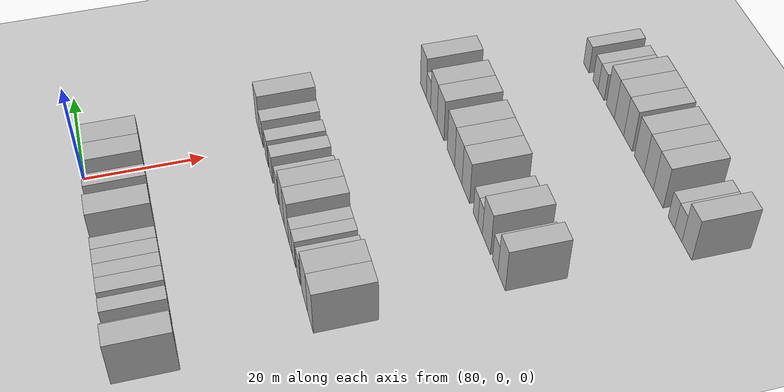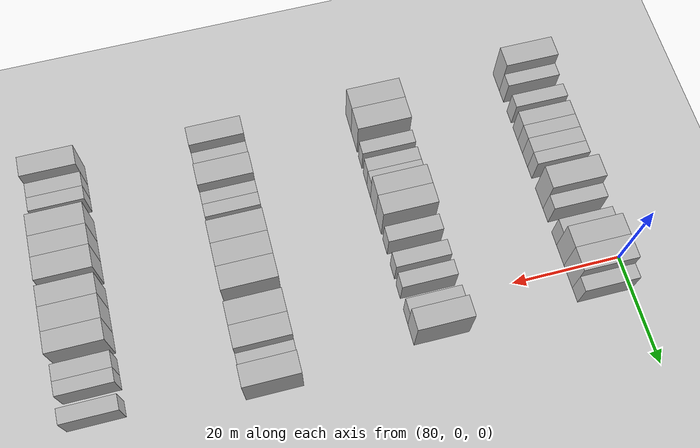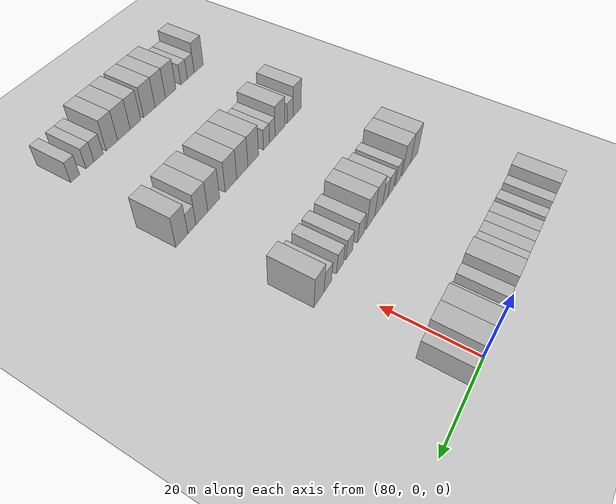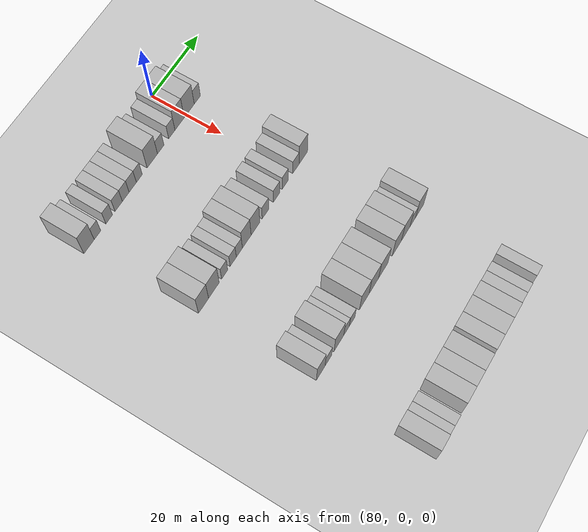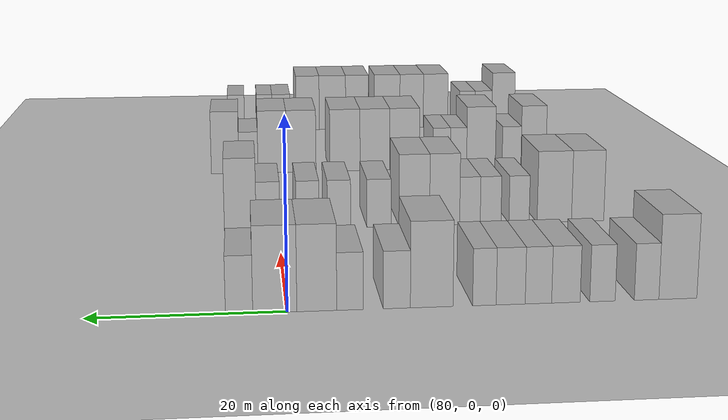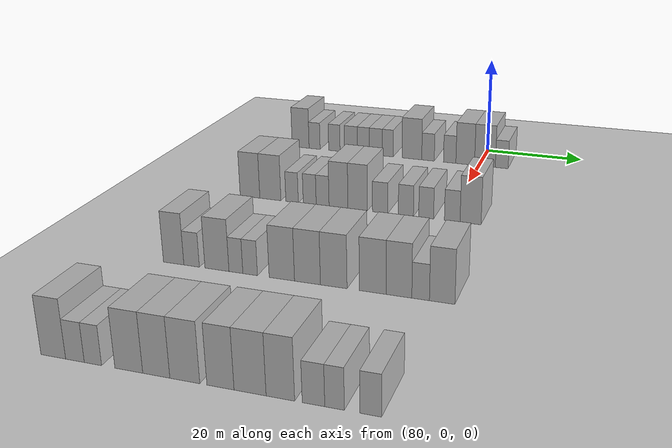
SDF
<sdf version="1.6">
 <world name="default">
  <include>
   <name>ground_plane_2</name>
   <uri>model://HANNAS_ground_plane</uri>
   <pose>100 0 0  0 0 0</pose>
  </include>
  <model name="building_544">
   <static>1</static>
   <pose>85.0000 -39.9580 0 0.000000 0.000000 0.000000</pose>
   <link name="link">
    <pose>0 0 4.50 0 0 0</pose>
    <collision name="collision"><geometry><box><size>10.0000 4.0042 9.0000</size></box></geometry></collision>
    <visual name="visual">
     <cast_shadows>0</cast_shadows>
     <geometry><box><size>10.0000 4.0042 9.0000</size></box></geometry>
     <material>
      <script>
       <uri>model://HANNAS_wall/materials/scripts</uri>
       <uri>model://HANNAS_wall/materials/textures</uri>
       <name>vrc/HANNAS_wall</name>
      </script>
     </material>
    </visual>
   </link>
  </model>
  <model name="building_545">
   <static>1</static>
   <pose>85.0000 -36.6675 0 0.000000 0.000000 0.000000</pose>
   <link name="link">
    <pose>0 0 3.00 0 0 0</pose>
    <collision name="collision"><geometry><box><size>10.0000 2.5767 6.0000</size></box></geometry></collision>
    <visual name="visual">
     <cast_shadows>0</cast_shadows>
     <geometry><box><size>10.0000 2.5767 6.0000</size></box></geometry>
     <material>
      <script>
       <uri>model://HANNAS_wall/materials/scripts</uri>
       <uri>model://HANNAS_wall/materials/textures</uri>
       <name>vrc/HANNAS_wall</name>
      </script>
     </material>
    </visual>
   </link>
  </model>
  <model name="building_546">
   <static>1</static>
   <pose>85.0000 -32.0566 0 0.000000 0.000000 0.000000</pose>
   <link name="link">
    <pose>0 0 3.00 0 0 0</pose>
    <collision name="collision"><geometry><box><size>10.0000 2.6451 6.0000</size></box></geometry></collision>
    <visual name="visual">
     <cast_shadows>0</cast_shadows>
     <geometry><box><size>10.0000 2.6451 6.0000</size></box></geometry>
     <material>
      <script>
       <uri>model://HANNAS_wall/materials/scripts</uri>
       <uri>model://HANNAS_wall/materials/textures</uri>
       <name>vrc/HANNAS_wall</name>
      </script>
     </material>
    </visual>
   </link>
  </model>
  <model name="building_547">
   <static>1</static>
   <pose>85.0000 -28.2557 0 0.000000 0.000000 0.000000</pose>
   <link name="link">
    <pose>0 0 3.00 0 0 0</pose>
    <collision name="collision"><geometry><box><size>10.0000 2.9567 6.0000</size></box></geometry></collision>
    <visual name="visual">
     <cast_shadows>0</cast_shadows>
     <geometry><box><size>10.0000 2.9567 6.0000</size></box></geometry>
     <material>
      <script>
       <uri>model://HANNAS_wall/materials/scripts</uri>
       <uri>model://HANNAS_wall/materials/textures</uri>
       <name>vrc/HANNAS_wall</name>
      </script>
     </material>
    </visual>
   </link>
  </model>
  <model name="building_548">
   <static>1</static>
   <pose>85.0000 -25.4140 0 0.000000 0.000000 0.000000</pose>
   <link name="link">
    <pose>0 0 3.00 0 0 0</pose>
    <collision name="collision"><geometry><box><size>10.0000 2.7268 6.0000</size></box></geometry></collision>
    <visual name="visual">
     <cast_shadows>0</cast_shadows>
     <geometry><box><size>10.0000 2.7268 6.0000</size></box></geometry>
     <material>
      <script>
       <uri>model://HANNAS_wall/materials/scripts</uri>
       <uri>model://HANNAS_wall/materials/textures</uri>
       <name>vrc/HANNAS_wall</name>
      </script>
     </material>
    </visual>
   </link>
  </model>
  <model name="building_549">
   <static>1</static>
   <pose>85.0000 -22.5615 0 0.000000 0.000000 0.000000</pose>
   <link name="link">
    <pose>0 0 3.00 0 0 0</pose>
    <collision name="collision"><geometry><box><size>10.0000 2.9781 6.0000</size></box></geometry></collision>
    <visual name="visual">
     <cast_shadows>0</cast_shadows>
     <geometry><box><size>10.0000 2.9781 6.0000</size></box></geometry>
     <material>
      <script>
       <uri>model://HANNAS_wall/materials/scripts</uri>
       <uri>model://HANNAS_wall/materials/textures</uri>
       <name>vrc/HANNAS_wall</name>
      </script>
     </material>
    </visual>
   </link>
  </model>
  <model name="building_550">
   <static>1</static>
   <pose>85.0000 -19.8662 0 0.000000 0.000000 0.000000</pose>
   <link name="link">
    <pose>0 0 3.00 0 0 0</pose>
    <collision name="collision"><geometry><box><size>10.0000 2.4125 6.0000</size></box></geometry></collision>
    <visual name="visual">
     <cast_shadows>0</cast_shadows>
     <geometry><box><size>10.0000 2.4125 6.0000</size></box></geometry>
     <material>
      <script>
       <uri>model://HANNAS_wall/materials/scripts</uri>
       <uri>model://HANNAS_wall/materials/textures</uri>
       <name>vrc/HANNAS_wall</name>
      </script>
     </material>
    </visual>
   </link>
  </model>
  <model name="building_551">
   <static>1</static>
   <pose>85.0000 -14.4963 0 0.000000 0.000000 0.000000</pose>
   <link name="link">
    <pose>0 0 4.50 0 0 0</pose>
    <collision name="collision"><geometry><box><size>10.0000 4.3272 9.0000</size></box></geometry></collision>
    <visual name="visual">
     <cast_shadows>0</cast_shadows>
     <geometry><box><size>10.0000 4.3272 9.0000</size></box></geometry>
     <material>
      <script>
       <uri>model://HANNAS_wall/materials/scripts</uri>
       <uri>model://HANNAS_wall/materials/textures</uri>
       <name>vrc/HANNAS_wall</name>
      </script>
     </material>
    </visual>
   </link>
  </model>
  <model name="building_552">
   <static>1</static>
   <pose>85.0000 -10.9630 0 0.000000 0.000000 0.000000</pose>
   <link name="link">
    <pose>0 0 3.00 0 0 0</pose>
    <collision name="collision"><geometry><box><size>10.0000 2.7395 6.0000</size></box></geometry></collision>
    <visual name="visual">
     <cast_shadows>0</cast_shadows>
     <geometry><box><size>10.0000 2.7395 6.0000</size></box></geometry>
     <material>
      <script>
       <uri>model://HANNAS_wall/materials/scripts</uri>
       <uri>model://HANNAS_wall/materials/textures</uri>
       <name>vrc/HANNAS_wall</name>
      </script>
     </material>
    </visual>
   </link>
  </model>
  <model name="building_553">
   <static>1</static>
   <pose>85.0000 -6.2572 0 0.000000 0.000000 0.000000</pose>
   <link name="link">
    <pose>0 0 3.00 0 0 0</pose>
    <collision name="collision"><geometry><box><size>10.0000 2.6720 6.0000</size></box></geometry></collision>
    <visual name="visual">
     <cast_shadows>0</cast_shadows>
     <geometry><box><size>10.0000 2.6720 6.0000</size></box></geometry>
     <material>
      <script>
       <uri>model://HANNAS_wall/materials/scripts</uri>
       <uri>model://HANNAS_wall/materials/textures</uri>
       <name>vrc/HANNAS_wall</name>
      </script>
     </material>
    </visual>
   </link>
  </model>
  <model name="building_554">
   <static>1</static>
   <pose>85.0000 -2.9309 0 0.000000 0.000000 0.000000</pose>
   <link name="link">
    <pose>0 0 4.50 0 0 0</pose>
    <collision name="collision"><geometry><box><size>10.0000 3.9807 9.0000</size></box></geometry></collision>
    <visual name="visual">
     <cast_shadows>0</cast_shadows>
     <geometry><box><size>10.0000 3.9807 9.0000</size></box></geometry>
     <material>
      <script>
       <uri>model://HANNAS_wall/materials/scripts</uri>
       <uri>model://HANNAS_wall/materials/textures</uri>
       <name>vrc/HANNAS_wall</name>
      </script>
     </material>
    </visual>
   </link>
  </model>
  <model name="building_555">
   <static>1</static>
   <pose>85.0000 1.2476 0 0.000000 0.000000 0.000000</pose>
   <link name="link">
    <pose>0 0 4.50 0 0 0</pose>
    <collision name="collision"><geometry><box><size>10.0000 4.3762 9.0000</size></box></geometry></collision>
    <visual name="visual">
     <cast_shadows>0</cast_shadows>
     <geometry><box><size>10.0000 4.3762 9.0000</size></box></geometry>
     <material>
      <script>
       <uri>model://HANNAS_wall/materials/scripts</uri>
       <uri>model://HANNAS_wall/materials/textures</uri>
       <name>vrc/HANNAS_wall</name>
      </script>
     </material>
    </visual>
   </link>
  </model>
  <model name="building_556">
   <static>1</static>
   <pose>85.0000 4.7857 0 0.000000 0.000000 0.000000</pose>
   <link name="link">
    <pose>0 0 3.00 0 0 0</pose>
    <collision name="collision"><geometry><box><size>10.0000 2.7001 6.0000</size></box></geometry></collision>
    <visual name="visual">
     <cast_shadows>0</cast_shadows>
     <geometry><box><size>10.0000 2.7001 6.0000</size></box></geometry>
     <material>
      <script>
       <uri>model://HANNAS_wall/materials/scripts</uri>
       <uri>model://HANNAS_wall/materials/textures</uri>
       <name>vrc/HANNAS_wall</name>
      </script>
     </material>
    </visual>
   </link>
  </model>
  <model name="building_774">
   <static>1</static>
   <pose>115.0000 -38.3271 0 0.000000 0.000000 0.000000</pose>
   <link name="link">
    <pose>0 0 4.50 0 0 0</pose>
    <collision name="collision"><geometry><box><size>10.0000 4.0976 9.0000</size></box></geometry></collision>
    <visual name="visual">
     <cast_shadows>0</cast_shadows>
     <geometry><box><size>10.0000 4.0976 9.0000</size></box></geometry>
     <material>
      <script>
       <uri>model://HANNAS_wall/materials/scripts</uri>
       <uri>model://HANNAS_wall/materials/textures</uri>
       <name>vrc/HANNAS_wall</name>
      </script>
     </material>
    </visual>
   </link>
  </model>
  <model name="building_775">
   <static>1</static>
   <pose>115.0000 -34.1061 0 0.000000 0.000000 0.000000</pose>
   <link name="link">
    <pose>0 0 4.50 0 0 0</pose>
    <collision name="collision"><geometry><box><size>10.0000 4.3443 9.0000</size></box></geometry></collision>
    <visual name="visual">
     <cast_shadows>0</cast_shadows>
     <geometry><box><size>10.0000 4.3443 9.0000</size></box></geometry>
     <material>
      <script>
       <uri>model://HANNAS_wall/materials/scripts</uri>
       <uri>model://HANNAS_wall/materials/textures</uri>
       <name>vrc/HANNAS_wall</name>
      </script>
     </material>
    </visual>
   </link>
  </model>
  <model name="building_776">
   <static>1</static>
   <pose>115.0000 -29.6674 0 0.000000 0.000000 0.000000</pose>
   <link name="link">
    <pose>0 0 3.00 0 0 0</pose>
    <collision name="collision"><geometry><box><size>10.0000 2.5332 6.0000</size></box></geometry></collision>
    <visual name="visual">
     <cast_shadows>0</cast_shadows>
     <geometry><box><size>10.0000 2.5332 6.0000</size></box></geometry>
     <material>
      <script>
       <uri>model://HANNAS_wall/materials/scripts</uri>
       <uri>model://HANNAS_wall/materials/textures</uri>
       <name>vrc/HANNAS_wall</name>
      </script>
     </material>
    </visual>
   </link>
  </model>
  <model name="building_777">
   <static>1</static>
   <pose>115.0000 -26.1018 0 0.000000 0.000000 0.000000</pose>
   <link name="link">
    <pose>0 0 3.00 0 0 0</pose>
    <collision name="collision"><geometry><box><size>10.0000 2.5980 6.0000</size></box></geometry></collision>
    <visual name="visual">
     <cast_shadows>0</cast_shadows>
     <geometry><box><size>10.0000 2.5980 6.0000</size></box></geometry>
     <material>
      <script>
       <uri>model://HANNAS_wall/materials/scripts</uri>
       <uri>model://HANNAS_wall/materials/textures</uri>
       <name>vrc/HANNAS_wall</name>
      </script>
     </material>
    </visual>
   </link>
  </model>
  <model name="building_778">
   <static>1</static>
   <pose>115.0000 -23.5207 0 0.000000 0.000000 0.000000</pose>
   <link name="link">
    <pose>0 0 3.00 0 0 0</pose>
    <collision name="collision"><geometry><box><size>10.0000 2.5643 6.0000</size></box></geometry></collision>
    <visual name="visual">
     <cast_shadows>0</cast_shadows>
     <geometry><box><size>10.0000 2.5643 6.0000</size></box></geometry>
     <material>
      <script>
       <uri>model://HANNAS_wall/materials/scripts</uri>
       <uri>model://HANNAS_wall/materials/textures</uri>
       <name>vrc/HANNAS_wall</name>
      </script>
     </material>
    </visual>
   </link>
  </model>
  <model name="building_779">
   <static>1</static>
   <pose>115.0000 -20.3742 0 0.000000 0.000000 0.000000</pose>
   <link name="link">
    <pose>0 0 4.50 0 0 0</pose>
    <collision name="collision"><geometry><box><size>10.0000 3.7287 9.0000</size></box></geometry></collision>
    <visual name="visual">
     <cast_shadows>0</cast_shadows>
     <geometry><box><size>10.0000 3.7287 9.0000</size></box></geometry>
     <material>
      <script>
       <uri>model://HANNAS_wall/materials/scripts</uri>
       <uri>model://HANNAS_wall/materials/textures</uri>
       <name>vrc/HANNAS_wall</name>
      </script>
     </material>
    </visual>
   </link>
  </model>
  <model name="building_780">
   <static>1</static>
   <pose>115.0000 -16.6239 0 0.000000 0.000000 0.000000</pose>
   <link name="link">
    <pose>0 0 4.50 0 0 0</pose>
    <collision name="collision"><geometry><box><size>10.0000 3.7720 9.0000</size></box></geometry></collision>
    <visual name="visual">
     <cast_shadows>0</cast_shadows>
     <geometry><box><size>10.0000 3.7720 9.0000</size></box></geometry>
     <material>
      <script>
       <uri>model://HANNAS_wall/materials/scripts</uri>
       <uri>model://HANNAS_wall/materials/textures</uri>
       <name>vrc/HANNAS_wall</name>
      </script>
     </material>
    </visual>
   </link>
  </model>
  <model name="building_781">
   <static>1</static>
   <pose>115.0000 -12.2601 0 0.000000 0.000000 0.000000</pose>
   <link name="link">
    <pose>0 0 3.00 0 0 0</pose>
    <collision name="collision"><geometry><box><size>10.0000 2.9555 6.0000</size></box></geometry></collision>
    <visual name="visual">
     <cast_shadows>0</cast_shadows>
     <geometry><box><size>10.0000 2.9555 6.0000</size></box></geometry>
     <material>
      <script>
       <uri>model://HANNAS_wall/materials/scripts</uri>
       <uri>model://HANNAS_wall/materials/textures</uri>
       <name>vrc/HANNAS_wall</name>
      </script>
     </material>
    </visual>
   </link>
  </model>
  <model name="building_782">
   <static>1</static>
   <pose>115.0000 -7.3558 0 0.000000 0.000000 0.000000</pose>
   <link name="link">
    <pose>0 0 3.00 0 0 0</pose>
    <collision name="collision"><geometry><box><size>10.0000 2.8531 6.0000</size></box></geometry></collision>
    <visual name="visual">
     <cast_shadows>0</cast_shadows>
     <geometry><box><size>10.0000 2.8531 6.0000</size></box></geometry>
     <material>
      <script>
       <uri>model://HANNAS_wall/materials/scripts</uri>
       <uri>model://HANNAS_wall/materials/textures</uri>
       <name>vrc/HANNAS_wall</name>
      </script>
     </material>
    </visual>
   </link>
  </model>
  <model name="building_783">
   <static>1</static>
   <pose>115.0000 -3.5425 0 0.000000 0.000000 0.000000</pose>
   <link name="link">
    <pose>0 0 3.00 0 0 0</pose>
    <collision name="collision"><geometry><box><size>10.0000 2.7734 6.0000</size></box></geometry></collision>
    <visual name="visual">
     <cast_shadows>0</cast_shadows>
     <geometry><box><size>10.0000 2.7734 6.0000</size></box></geometry>
     <material>
      <script>
       <uri>model://HANNAS_wall/materials/scripts</uri>
       <uri>model://HANNAS_wall/materials/textures</uri>
       <name>vrc/HANNAS_wall</name>
      </script>
     </material>
    </visual>
   </link>
  </model>
  <model name="building_784">
   <static>1</static>
   <pose>115.0000 1.2769 0 0.000000 0.000000 0.000000</pose>
   <link name="link">
    <pose>0 0 3.00 0 0 0</pose>
    <collision name="collision"><geometry><box><size>10.0000 2.8654 6.0000</size></box></geometry></collision>
    <visual name="visual">
     <cast_shadows>0</cast_shadows>
     <geometry><box><size>10.0000 2.8654 6.0000</size></box></geometry>
     <material>
      <script>
       <uri>model://HANNAS_wall/materials/scripts</uri>
       <uri>model://HANNAS_wall/materials/textures</uri>
       <name>vrc/HANNAS_wall</name>
      </script>
     </material>
    </visual>
   </link>
  </model>
  <model name="building_785">
   <static>1</static>
   <pose>115.0000 4.6219 0 0.000000 0.000000 0.000000</pose>
   <link name="link">
    <pose>0 0 4.50 0 0 0</pose>
    <collision name="collision"><geometry><box><size>10.0000 3.8247 9.0000</size></box></geometry></collision>
    <visual name="visual">
     <cast_shadows>0</cast_shadows>
     <geometry><box><size>10.0000 3.8247 9.0000</size></box></geometry>
     <material>
      <script>
       <uri>model://HANNAS_wall/materials/scripts</uri>
       <uri>model://HANNAS_wall/materials/textures</uri>
       <name>vrc/HANNAS_wall</name>
      </script>
     </material>
    </visual>
   </link>
  </model>
  <model name="building_996">
   <static>1</static>
   <pose>145.0000 -38.0317 0 0.000000 0.000000 0.000000</pose>
   <link name="link">
    <pose>0 0 4.50 0 0 0</pose>
    <collision name="collision"><geometry><box><size>10.0000 3.6993 9.0000</size></box></geometry></collision>
    <visual name="visual">
     <cast_shadows>0</cast_shadows>
     <geometry><box><size>10.0000 3.6993 9.0000</size></box></geometry>
     <material>
      <script>
       <uri>model://HANNAS_wall/materials/scripts</uri>
       <uri>model://HANNAS_wall/materials/textures</uri>
       <name>vrc/HANNAS_wall</name>
      </script>
     </material>
    </visual>
   </link>
  </model>
  <model name="building_997">
   <static>1</static>
   <pose>145.0000 -34.7916 0 0.000000 0.000000 0.000000</pose>
   <link name="link">
    <pose>0 0 3.00 0 0 0</pose>
    <collision name="collision"><geometry><box><size>10.0000 2.7809 6.0000</size></box></geometry></collision>
    <visual name="visual">
     <cast_shadows>0</cast_shadows>
     <geometry><box><size>10.0000 2.7809 6.0000</size></box></geometry>
     <material>
      <script>
       <uri>model://HANNAS_wall/materials/scripts</uri>
       <uri>model://HANNAS_wall/materials/textures</uri>
       <name>vrc/HANNAS_wall</name>
      </script>
     </material>
    </visual>
   </link>
  </model>
  <model name="building_998">
   <static>1</static>
   <pose>145.0000 -30.2820 0 0.000000 0.000000 0.000000</pose>
   <link name="link">
    <pose>0 0 4.50 0 0 0</pose>
    <collision name="collision"><geometry><box><size>10.0000 4.2382 9.0000</size></box></geometry></collision>
    <visual name="visual">
     <cast_shadows>0</cast_shadows>
     <geometry><box><size>10.0000 4.2382 9.0000</size></box></geometry>
     <material>
      <script>
       <uri>model://HANNAS_wall/materials/scripts</uri>
       <uri>model://HANNAS_wall/materials/textures</uri>
       <name>vrc/HANNAS_wall</name>
      </script>
     </material>
    </visual>
   </link>
  </model>
  <model name="building_999">
   <static>1</static>
   <pose>145.0000 -26.9569 0 0.000000 0.000000 0.000000</pose>
   <link name="link">
    <pose>0 0 3.00 0 0 0</pose>
    <collision name="collision"><geometry><box><size>10.0000 2.4120 6.0000</size></box></geometry></collision>
    <visual name="visual">
     <cast_shadows>0</cast_shadows>
     <geometry><box><size>10.0000 2.4120 6.0000</size></box></geometry>
     <material>
      <script>
       <uri>model://HANNAS_wall/materials/scripts</uri>
       <uri>model://HANNAS_wall/materials/textures</uri>
       <name>vrc/HANNAS_wall</name>
      </script>
     </material>
    </visual>
   </link>
  </model>
  <model name="building_1000">
   <static>1</static>
   <pose>145.0000 -24.4877 0 0.000000 0.000000 0.000000</pose>
   <link name="link">
    <pose>0 0 3.00 0 0 0</pose>
    <collision name="collision"><geometry><box><size>10.0000 2.5264 6.0000</size></box></geometry></collision>
    <visual name="visual">
     <cast_shadows>0</cast_shadows>
     <geometry><box><size>10.0000 2.5264 6.0000</size></box></geometry>
     <material>
      <script>
       <uri>model://HANNAS_wall/materials/scripts</uri>
       <uri>model://HANNAS_wall/materials/textures</uri>
       <name>vrc/HANNAS_wall</name>
      </script>
     </material>
    </visual>
   </link>
  </model>
  <model name="building_1001">
   <static>1</static>
   <pose>145.0000 -19.0742 0 0.000000 0.000000 0.000000</pose>
   <link name="link">
    <pose>0 0 4.50 0 0 0</pose>
    <collision name="collision"><geometry><box><size>10.0000 4.3006 9.0000</size></box></geometry></collision>
    <visual name="visual">
     <cast_shadows>0</cast_shadows>
     <geometry><box><size>10.0000 4.3006 9.0000</size></box></geometry>
     <material>
      <script>
       <uri>model://HANNAS_wall/materials/scripts</uri>
       <uri>model://HANNAS_wall/materials/textures</uri>
       <name>vrc/HANNAS_wall</name>
      </script>
     </material>
    </visual>
   </link>
  </model>
  <model name="building_1002">
   <static>1</static>
   <pose>145.0000 -14.7671 0 0.000000 0.000000 0.000000</pose>
   <link name="link">
    <pose>0 0 4.50 0 0 0</pose>
    <collision name="collision"><geometry><box><size>10.0000 4.3137 9.0000</size></box></geometry></collision>
    <visual name="visual">
     <cast_shadows>0</cast_shadows>
     <geometry><box><size>10.0000 4.3137 9.0000</size></box></geometry>
     <material>
      <script>
       <uri>model://HANNAS_wall/materials/scripts</uri>
       <uri>model://HANNAS_wall/materials/textures</uri>
       <name>vrc/HANNAS_wall</name>
      </script>
     </material>
    </visual>
   </link>
  </model>
  <model name="building_1003">
   <static>1</static>
   <pose>145.0000 -10.4313 0 0.000000 0.000000 0.000000</pose>
   <link name="link">
    <pose>0 0 4.50 0 0 0</pose>
    <collision name="collision"><geometry><box><size>10.0000 4.3578 9.0000</size></box></geometry></collision>
    <visual name="visual">
     <cast_shadows>0</cast_shadows>
     <geometry><box><size>10.0000 4.3578 9.0000</size></box></geometry>
     <material>
      <script>
       <uri>model://HANNAS_wall/materials/scripts</uri>
       <uri>model://HANNAS_wall/materials/textures</uri>
       <name>vrc/HANNAS_wall</name>
      </script>
     </material>
    </visual>
   </link>
  </model>
  <model name="building_1004">
   <static>1</static>
   <pose>145.0000 -4.1289 0 0.000000 0.000000 0.000000</pose>
   <link name="link">
    <pose>0 0 4.50 0 0 0</pose>
    <collision name="collision"><geometry><box><size>10.0000 4.2470 9.0000</size></box></geometry></collision>
    <visual name="visual">
     <cast_shadows>0</cast_shadows>
     <geometry><box><size>10.0000 4.2470 9.0000</size></box></geometry>
     <material>
      <script>
       <uri>model://HANNAS_wall/materials/scripts</uri>
       <uri>model://HANNAS_wall/materials/textures</uri>
       <name>vrc/HANNAS_wall</name>
      </script>
     </material>
    </visual>
   </link>
  </model>
  <model name="building_1005">
   <static>1</static>
   <pose>145.0000 0.0272 0 0.000000 0.000000 0.000000</pose>
   <link name="link">
    <pose>0 0 4.50 0 0 0</pose>
    <collision name="collision"><geometry><box><size>10.0000 4.0651 9.0000</size></box></geometry></collision>
    <visual name="visual">
     <cast_shadows>0</cast_shadows>
     <geometry><box><size>10.0000 4.0651 9.0000</size></box></geometry>
     <material>
      <script>
       <uri>model://HANNAS_wall/materials/scripts</uri>
       <uri>model://HANNAS_wall/materials/textures</uri>
       <name>vrc/HANNAS_wall</name>
      </script>
     </material>
    </visual>
   </link>
  </model>
  <model name="building_1006">
   <static>1</static>
   <pose>145.0000 3.4234 0 0.000000 0.000000 0.000000</pose>
   <link name="link">
    <pose>0 0 3.00 0 0 0</pose>
    <collision name="collision"><geometry><box><size>10.0000 2.7273 6.0000</size></box></geometry></collision>
    <visual name="visual">
     <cast_shadows>0</cast_shadows>
     <geometry><box><size>10.0000 2.7273 6.0000</size></box></geometry>
     <material>
      <script>
       <uri>model://HANNAS_wall/materials/scripts</uri>
       <uri>model://HANNAS_wall/materials/textures</uri>
       <name>vrc/HANNAS_wall</name>
      </script>
     </material>
    </visual>
   </link>
  </model>
  <model name="building_1007">
   <static>1</static>
   <pose>145.0000 6.7383 0 0.000000 0.000000 0.000000</pose>
   <link name="link">
    <pose>0 0 4.50 0 0 0</pose>
    <collision name="collision"><geometry><box><size>10.0000 3.9027 9.0000</size></box></geometry></collision>
    <visual name="visual">
     <cast_shadows>0</cast_shadows>
     <geometry><box><size>10.0000 3.9027 9.0000</size></box></geometry>
     <material>
      <script>
       <uri>model://HANNAS_wall/materials/scripts</uri>
       <uri>model://HANNAS_wall/materials/textures</uri>
       <name>vrc/HANNAS_wall</name>
      </script>
     </material>
    </visual>
   </link>
  </model>
  <model name="building_1221">
   <static>1</static>
   <pose>175.0000 -39.4355 0 0.000000 0.000000 0.000000</pose>
   <link name="link">
    <pose>0 0 4.50 0 0 0</pose>
    <collision name="collision"><geometry><box><size>10.0000 3.8456 9.0000</size></box></geometry></collision>
    <visual name="visual">
     <cast_shadows>0</cast_shadows>
     <geometry><box><size>10.0000 3.8456 9.0000</size></box></geometry>
     <material>
      <script>
       <uri>model://HANNAS_wall/materials/scripts</uri>
       <uri>model://HANNAS_wall/materials/textures</uri>
       <name>vrc/HANNAS_wall</name>
      </script>
     </material>
    </visual>
   </link>
  </model>
  <model name="building_1222">
   <static>1</static>
   <pose>175.0000 -36.0799 0 0.000000 0.000000 0.000000</pose>
   <link name="link">
    <pose>0 0 3.00 0 0 0</pose>
    <collision name="collision"><geometry><box><size>10.0000 2.8656 6.0000</size></box></geometry></collision>
    <visual name="visual">
     <cast_shadows>0</cast_shadows>
     <geometry><box><size>10.0000 2.8656 6.0000</size></box></geometry>
     <material>
      <script>
       <uri>model://HANNAS_wall/materials/scripts</uri>
       <uri>model://HANNAS_wall/materials/textures</uri>
       <name>vrc/HANNAS_wall</name>
      </script>
     </material>
    </visual>
   </link>
  </model>
  <model name="building_1223">
   <static>1</static>
   <pose>175.0000 -33.3329 0 0.000000 0.000000 0.000000</pose>
   <link name="link">
    <pose>0 0 3.00 0 0 0</pose>
    <collision name="collision"><geometry><box><size>10.0000 2.6284 6.0000</size></box></geometry></collision>
    <visual name="visual">
     <cast_shadows>0</cast_shadows>
     <geometry><box><size>10.0000 2.6284 6.0000</size></box></geometry>
     <material>
      <script>
       <uri>model://HANNAS_wall/materials/scripts</uri>
       <uri>model://HANNAS_wall/materials/textures</uri>
       <name>vrc/HANNAS_wall</name>
      </script>
     </material>
    </visual>
   </link>
  </model>
  <model name="building_1224">
   <static>1</static>
   <pose>175.0000 -27.9560 0 0.000000 0.000000 0.000000</pose>
   <link name="link">
    <pose>0 0 4.50 0 0 0</pose>
    <collision name="collision"><geometry><box><size>10.0000 4.1255 9.0000</size></box></geometry></collision>
    <visual name="visual">
     <cast_shadows>0</cast_shadows>
     <geometry><box><size>10.0000 4.1255 9.0000</size></box></geometry>
     <material>
      <script>
       <uri>model://HANNAS_wall/materials/scripts</uri>
       <uri>model://HANNAS_wall/materials/textures</uri>
       <name>vrc/HANNAS_wall</name>
      </script>
     </material>
    </visual>
   </link>
  </model>
  <model name="building_1225">
   <static>1</static>
   <pose>175.0000 -23.9215 0 0.000000 0.000000 0.000000</pose>
   <link name="link">
    <pose>0 0 4.50 0 0 0</pose>
    <collision name="collision"><geometry><box><size>10.0000 3.9435 9.0000</size></box></geometry></collision>
    <visual name="visual">
     <cast_shadows>0</cast_shadows>
     <geometry><box><size>10.0000 3.9435 9.0000</size></box></geometry>
     <material>
      <script>
       <uri>model://HANNAS_wall/materials/scripts</uri>
       <uri>model://HANNAS_wall/materials/textures</uri>
       <name>vrc/HANNAS_wall</name>
      </script>
     </material>
    </visual>
   </link>
  </model>
  <model name="building_1226">
   <static>1</static>
   <pose>175.0000 -19.8129 0 0.000000 0.000000 0.000000</pose>
   <link name="link">
    <pose>0 0 4.50 0 0 0</pose>
    <collision name="collision"><geometry><box><size>10.0000 4.2737 9.0000</size></box></geometry></collision>
    <visual name="visual">
     <cast_shadows>0</cast_shadows>
     <geometry><box><size>10.0000 4.2737 9.0000</size></box></geometry>
     <material>
      <script>
       <uri>model://HANNAS_wall/materials/scripts</uri>
       <uri>model://HANNAS_wall/materials/textures</uri>
       <name>vrc/HANNAS_wall</name>
      </script>
     </material>
    </visual>
   </link>
  </model>
  <model name="building_1227">
   <static>1</static>
   <pose>175.0000 -14.7808 0 0.000000 0.000000 0.000000</pose>
   <link name="link">
    <pose>0 0 4.50 0 0 0</pose>
    <collision name="collision"><geometry><box><size>10.0000 3.7906 9.0000</size></box></geometry></collision>
    <visual name="visual">
     <cast_shadows>0</cast_shadows>
     <geometry><box><size>10.0000 3.7906 9.0000</size></box></geometry>
     <material>
      <script>
       <uri>model://HANNAS_wall/materials/scripts</uri>
       <uri>model://HANNAS_wall/materials/textures</uri>
       <name>vrc/HANNAS_wall</name>
      </script>
     </material>
    </visual>
   </link>
  </model>
  <model name="building_1228">
   <static>1</static>
   <pose>175.0000 -10.6940 0 0.000000 0.000000 0.000000</pose>
   <link name="link">
    <pose>0 0 4.50 0 0 0</pose>
    <collision name="collision"><geometry><box><size>10.0000 4.3830 9.0000</size></box></geometry></collision>
    <visual name="visual">
     <cast_shadows>0</cast_shadows>
     <geometry><box><size>10.0000 4.3830 9.0000</size></box></geometry>
     <material>
      <script>
       <uri>model://HANNAS_wall/materials/scripts</uri>
       <uri>model://HANNAS_wall/materials/textures</uri>
       <name>vrc/HANNAS_wall</name>
      </script>
     </material>
    </visual>
   </link>
  </model>
  <model name="building_1229">
   <static>1</static>
   <pose>175.0000 -6.5859 0 0.000000 0.000000 0.000000</pose>
   <link name="link">
    <pose>0 0 4.50 0 0 0</pose>
    <collision name="collision"><geometry><box><size>10.0000 3.8331 9.0000</size></box></geometry></collision>
    <visual name="visual">
     <cast_shadows>0</cast_shadows>
     <geometry><box><size>10.0000 3.8331 9.0000</size></box></geometry>
     <material>
      <script>
       <uri>model://HANNAS_wall/materials/scripts</uri>
       <uri>model://HANNAS_wall/materials/textures</uri>
       <name>vrc/HANNAS_wall</name>
      </script>
     </material>
    </visual>
   </link>
  </model>
  <model name="building_1230">
   <static>1</static>
   <pose>175.0000 -2.1884 0 0.000000 0.000000 0.000000</pose>
   <link name="link">
    <pose>0 0 3.00 0 0 0</pose>
    <collision name="collision"><geometry><box><size>10.0000 2.9619 6.0000</size></box></geometry></collision>
    <visual name="visual">
     <cast_shadows>0</cast_shadows>
     <geometry><box><size>10.0000 2.9619 6.0000</size></box></geometry>
     <material>
      <script>
       <uri>model://HANNAS_wall/materials/scripts</uri>
       <uri>model://HANNAS_wall/materials/textures</uri>
       <name>vrc/HANNAS_wall</name>
      </script>
     </material>
    </visual>
   </link>
  </model>
  <model name="building_1231">
   <static>1</static>
   <pose>175.0000 0.5633 0 0.000000 0.000000 0.000000</pose>
   <link name="link">
    <pose>0 0 3.00 0 0 0</pose>
    <collision name="collision"><geometry><box><size>10.0000 2.5414 6.0000</size></box></geometry></collision>
    <visual name="visual">
     <cast_shadows>0</cast_shadows>
     <geometry><box><size>10.0000 2.5414 6.0000</size></box></geometry>
     <material>
      <script>
       <uri>model://HANNAS_wall/materials/scripts</uri>
       <uri>model://HANNAS_wall/materials/textures</uri>
       <name>vrc/HANNAS_wall</name>
      </script>
     </material>
    </visual>
   </link>
  </model>
  <model name="building_1232">
   <static>1</static>
   <pose>175.0000 5.2042 0 0.000000 0.000000 0.000000</pose>
   <link name="link">
    <pose>0 0 3.00 0 0 0</pose>
    <collision name="collision"><geometry><box><size>10.0000 2.7405 6.0000</size></box></geometry></collision>
    <visual name="visual">
     <cast_shadows>0</cast_shadows>
     <geometry><box><size>10.0000 2.7405 6.0000</size></box></geometry>
     <material>
      <script>
       <uri>model://HANNAS_wall/materials/scripts</uri>
       <uri>model://HANNAS_wall/materials/textures</uri>
       <name>vrc/HANNAS_wall</name>
      </script>
     </material>
    </visual>
   </link>
  </model>
 </world>
</sdf>
